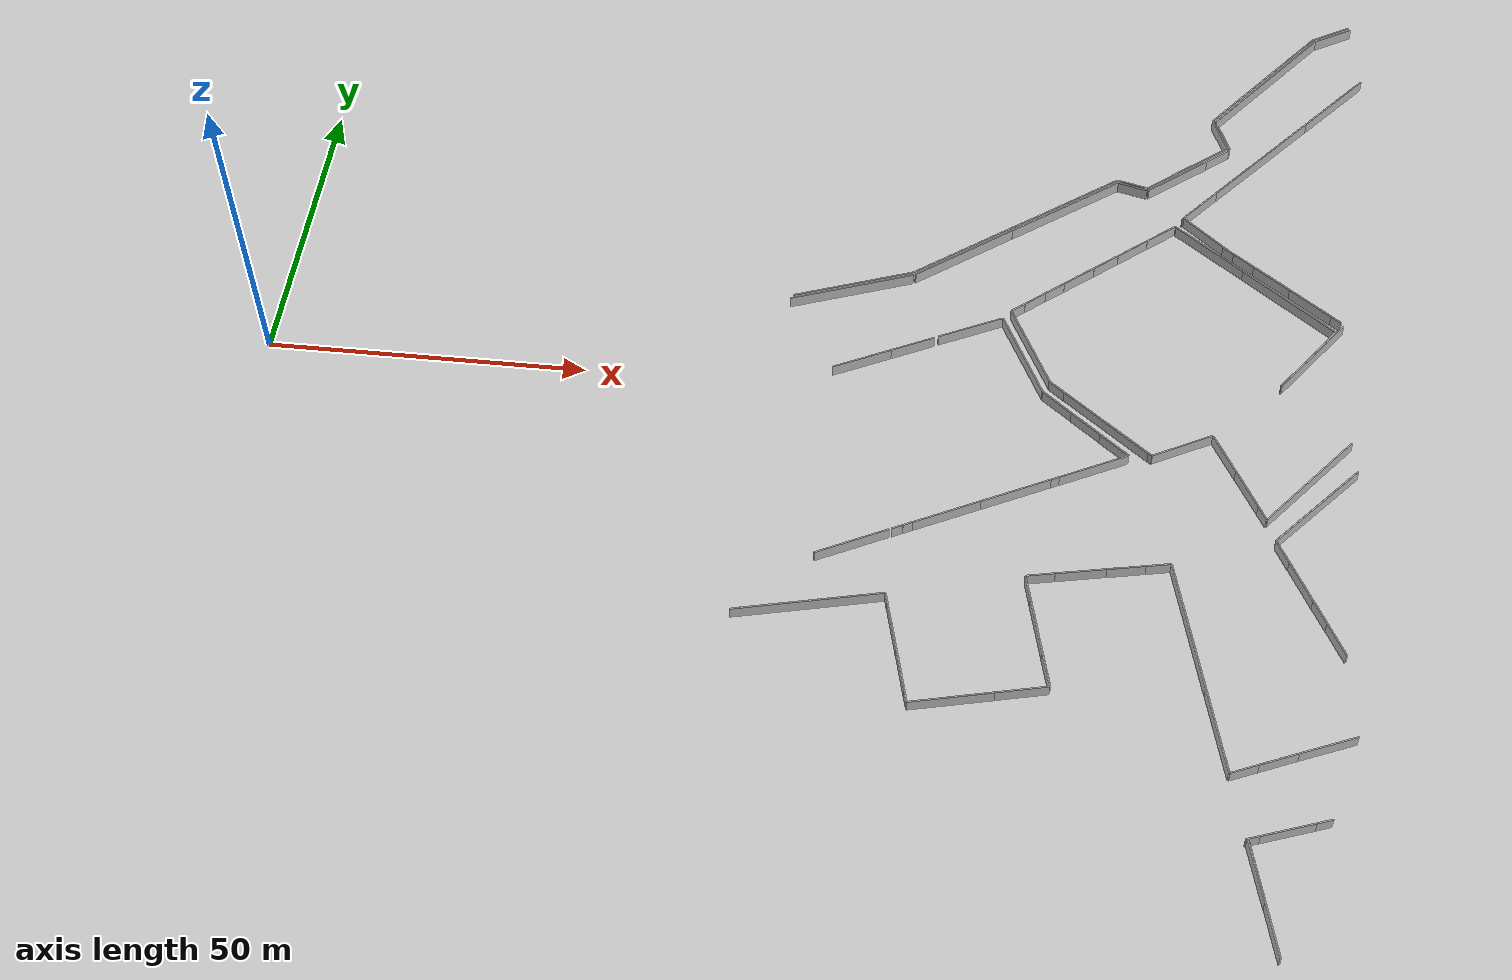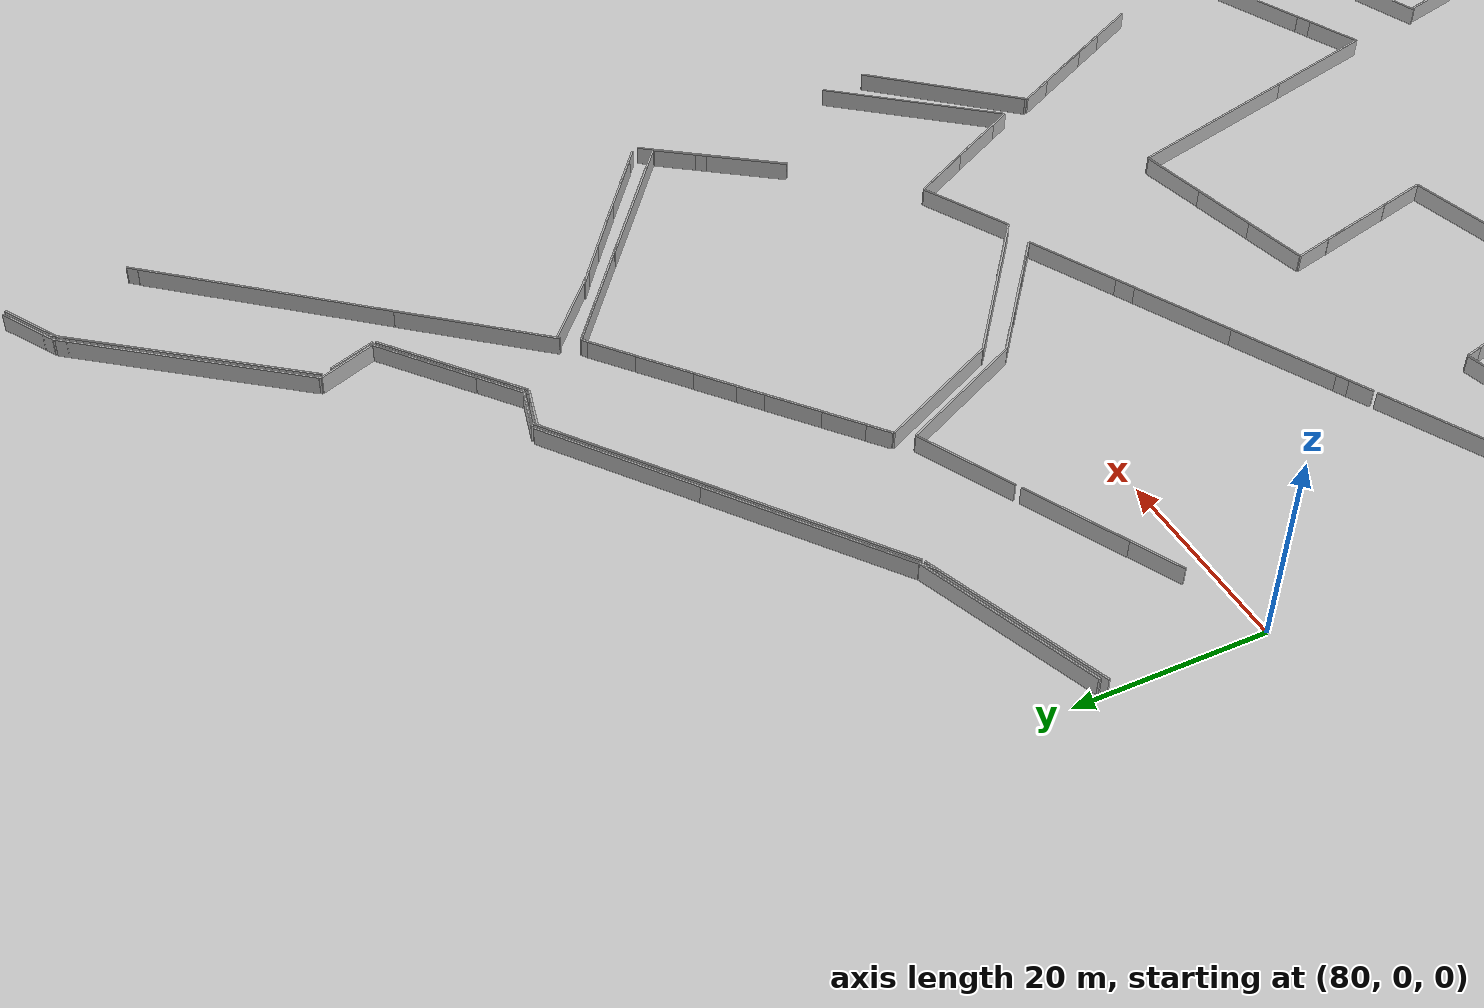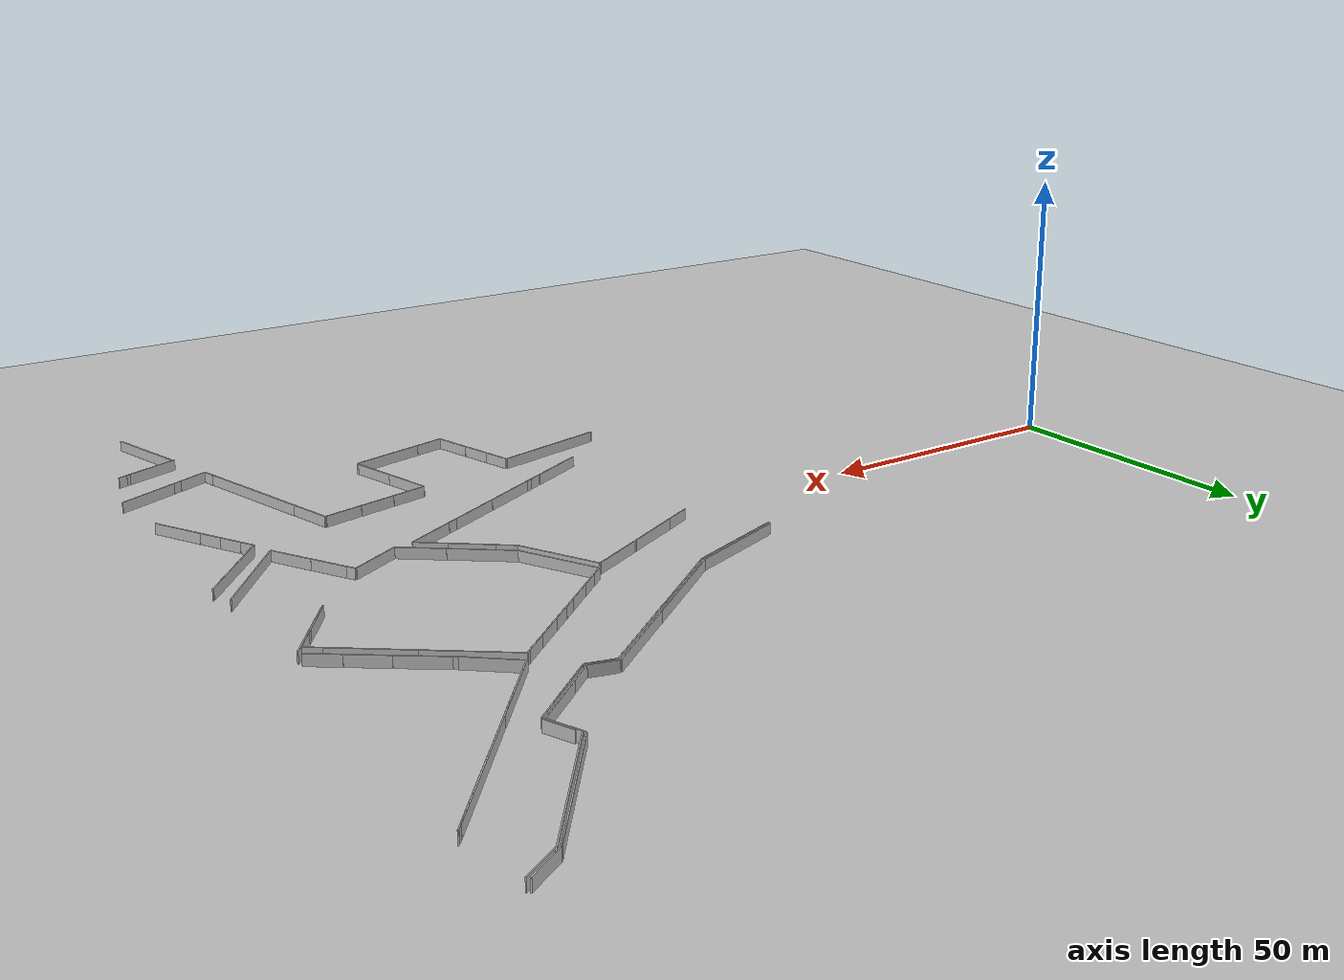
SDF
<sdf version="1.7">
 <world name="slam_world">
  <model name="ground_plane">
   <static>1</static>
   <link name="link">
    <collision name="collision">
     <geometry><plane><normal>0 0 1</normal><size>100 100</size></plane></geometry>
    </collision>
    <visual name="visual">
     <geometry><plane><normal>0 0 1</normal><size>100 100</size></plane></geometry>
     <material>
      <ambient>0.8 0.8 0.8 1</ambient>
      <diffuse>0.8 0.8 0.8 1</diffuse>
      <specular>0.8 0.8 0.8 1</specular>
     </material>
    </visual>
   </link>
  </model>
  <model name="wall_2">
   <static>1</static>
   <pose>115.076 35.5 1 0 -0 0.645263</pose>
   <link name="link">
    <collision name="collision"><geometry><box><size>39.7401 0.2 2</size></box></geometry></collision>
    <visual name="visual">
     <geometry><box><size>39.7401 0.2 2</size></box></geometry>
     <material><ambient>0.5 0.5 0.5 1</ambient><diffuse>0.7 0.7 0.7 1</diffuse></material>
    </visual>
   </link>
  </model>
  <model name="wall_3">
   <static>1</static>
   <pose>155.401 56.975 1 0 -0 0.872171</pose>
   <link name="link">
    <collision name="collision"><geometry><box><size>44.4675 0.2 2</size></box></geometry></collision>
    <visual name="visual">
     <geometry><box><size>44.4675 0.2 2</size></box></geometry>
     <material><ambient>0.5 0.5 0.5 1</ambient><diffuse>0.7 0.7 0.7 1</diffuse></material>
    </visual>
   </link>
  </model>
  <model name="wall_4">
   <static>1</static>
   <pose>154.201 73.825 1 0 -0 0.907997</pose>
   <link name="link">
    <collision name="collision"><geometry><box><size>27.4651 0.2 2</size></box></geometry></collision>
    <visual name="visual">
     <geometry><box><size>27.4651 0.2 2</size></box></geometry>
     <material><ambient>0.5 0.5 0.5 1</ambient><diffuse>0.7 0.7 0.7 1</diffuse></material>
    </visual>
   </link>
  </model>
  <model name="wall_7">
   <static>1</static>
   <pose>113.851 35.2 1 0 -0 0.644967</pose>
   <link name="link">
    <collision name="collision"><geometry><box><size>40.92 0.2 2</size></box></geometry></collision>
    <visual name="visual">
     <geometry><box><size>40.92 0.2 2</size></box></geometry>
     <material><ambient>0.5 0.5 0.5 1</ambient><diffuse>0.7 0.7 0.7 1</diffuse></material>
    </visual>
   </link>
  </model>
  <model name="wall_17">
   <static>1</static>
   <pose>155.026 74.05 1 0 -0 0.907765</pose>
   <link name="link">
    <collision name="collision"><geometry><box><size>28.6755 0.2 2</size></box></geometry></collision>
    <visual name="visual">
     <geometry><box><size>28.6755 0.2 2</size></box></geometry>
     <material><ambient>0.5 0.5 0.5 1</ambient><diffuse>0.7 0.7 0.7 1</diffuse></material>
    </visual>
   </link>
  </model>
  <model name="wall_18">
   <static>1</static>
   <pose>89.076 -40.8 1 0 -0 0.228296</pose>
   <link name="link">
    <collision name="collision"><geometry><box><size>22.5347 0.2 2</size></box></geometry></collision>
    <visual name="visual">
     <geometry><box><size>22.5347 0.2 2</size></box></geometry>
     <material><ambient>0.5 0.5 0.5 1</ambient><diffuse>0.7 0.7 0.7 1</diffuse></material>
    </visual>
   </link>
  </model>
  <model name="wall_28">
   <static>1</static>
   <pose>151.576 29.1 1 0 0 -0.664518</pose>
   <link name="link">
    <collision name="collision"><geometry><box><size>29.0264 0.2 2</size></box></geometry></collision>
    <visual name="visual">
     <geometry><box><size>29.0264 0.2 2</size></box></geometry>
     <material><ambient>0.5 0.5 0.5 1</ambient><diffuse>0.7 0.7 0.7 1</diffuse></material>
    </visual>
   </link>
  </model>
  <model name="wall_42">
   <static>1</static>
   <pose>141.926 51.1 1 0 -0 0.681298</pose>
   <link name="link">
    <collision name="collision"><geometry><box><size>16.6719 0.2 2</size></box></geometry></collision>
    <visual name="visual">
     <geometry><box><size>16.6719 0.2 2</size></box></geometry>
     <material><ambient>0.5 0.5 0.5 1</ambient><diffuse>0.7 0.7 0.7 1</diffuse></material>
    </visual>
   </link>
  </model>
  <model name="wall_51">
   <static>1</static>
   <pose>129.226 -2.575 1 0 0 -0.679039</pose>
   <link name="link">
    <collision name="collision"><geometry><box><size>19.9826 0.2 2</size></box></geometry></collision>
    <visual name="visual">
     <geometry><box><size>19.9826 0.2 2</size></box></geometry>
     <material><ambient>0.5 0.5 0.5 1</ambient><diffuse>0.7 0.7 0.7 1</diffuse></material>
    </visual>
   </link>
  </model>
  <model name="wall_61">
   <static>1</static>
   <pose>141.601 51.45 1 0 -0 0.680941</pose>
   <link name="link">
    <collision name="collision"><geometry><box><size>17.6324 0.2 2</size></box></geometry></collision>
    <visual name="visual">
     <geometry><box><size>17.6324 0.2 2</size></box></geometry>
     <material><ambient>0.5 0.5 0.5 1</ambient><diffuse>0.7 0.7 0.7 1</diffuse></material>
    </visual>
   </link>
  </model>
  <model name="wall_75">
   <static>1</static>
   <pose>154.301 -81.8 1 0 0 -1.32718</pose>
   <link name="link">
    <collision name="collision"><geometry><box><size>17.8264 0.2 2</size></box></geometry></collision>
    <visual name="visual">
     <geometry><box><size>17.8264 0.2 2</size></box></geometry>
     <material><ambient>0.5 0.5 0.5 1</ambient><diffuse>0.7 0.7 0.7 1</diffuse></material>
    </visual>
   </link>
  </model>
  <model name="wall_80">
   <static>1</static>
   <pose>162.926 14.75 1 0 -0 0.933726</pose>
   <link name="link">
    <collision name="collision"><geometry><box><size>3.11006 0.2 2</size></box></geometry></collision>
    <visual name="visual">
     <geometry><box><size>3.11006 0.2 2</size></box></geometry>
     <material><ambient>0.5 0.5 0.5 1</ambient><diffuse>0.7 0.7 0.7 1</diffuse></material>
    </visual>
   </link>
  </model>
  <model name="wall_88">
   <static>1</static>
   <pose>162.151 -16.125 1 0 -0 0.855758</pose>
   <link name="link">
    <collision name="collision"><geometry><box><size>18.6076 0.2 2</size></box></geometry></collision>
    <visual name="visual">
     <geometry><box><size>18.6076 0.2 2</size></box></geometry>
     <material><ambient>0.5 0.5 0.5 1</ambient><diffuse>0.7 0.7 0.7 1</diffuse></material>
    </visual>
   </link>
  </model>
  <model name="wall_91">
   <static>1</static>
   <pose>98.176 8.15 1 0 -0 0.457719</pose>
   <link name="link">
    <collision name="collision"><geometry><box><size>11.3147 0.2 2</size></box></geometry></collision>
    <visual name="visual">
     <geometry><box><size>11.3147 0.2 2</size></box></geometry>
     <material><ambient>0.5 0.5 0.5 1</ambient><diffuse>0.7 0.7 0.7 1</diffuse></material>
    </visual>
   </link>
  </model>
  <model name="wall_95">
   <static>1</static>
   <pose>89.451 19.95 1 0 -0 0.350045</pose>
   <link name="link">
    <collision name="collision"><geometry><box><size>20.1201 0.2 2</size></box></geometry></collision>
    <visual name="visual">
     <geometry><box><size>20.1201 0.2 2</size></box></geometry>
     <material><ambient>0.5 0.5 0.5 1</ambient><diffuse>0.7 0.7 0.7 1</diffuse></material>
    </visual>
   </link>
  </model>
  <model name="wall_105">
   <static>1</static>
   <pose>143.576 -39.425 1 0 0 -1.32526</pose>
   <link name="link">
    <collision name="collision"><geometry><box><size>21.5978 0.2 2</size></box></geometry></collision>
    <visual name="visual">
     <geometry><box><size>21.5978 0.2 2</size></box></geometry>
     <material><ambient>0.5 0.5 0.5 1</ambient><diffuse>0.7 0.7 0.7 1</diffuse></material>
    </visual>
   </link>
  </model>
  <model name="wall_107">
   <static>1</static>
   <pose>118.201 10.475 1 0 0 -1.1144</pose>
   <link name="link">
    <collision name="collision"><geometry><box><size>15.4293 0.2 2</size></box></geometry></collision>
    <visual name="visual">
     <geometry><box><size>15.4293 0.2 2</size></box></geometry>
     <material><ambient>0.5 0.5 0.5 1</ambient><diffuse>0.7 0.7 0.7 1</diffuse></material>
    </visual>
   </link>
  </model>
  <model name="wall_117">
   <static>1</static>
   <pose>117.076 8.65 1 0 0 -1.11563</pose>
   <link name="link">
    <collision name="collision"><geometry><box><size>15.8096 0.2 2</size></box></geometry></collision>
    <visual name="visual">
     <geometry><box><size>15.8096 0.2 2</size></box></geometry>
     <material><ambient>0.5 0.5 0.5 1</ambient><diffuse>0.7 0.7 0.7 1</diffuse></material>
    </visual>
   </link>
  </model>
  <model name="wall_124">
   <static>1</static>
   <pose>128.976 -12.125 1 0 -0 0.469541</pose>
   <link name="link">
    <collision name="collision"><geometry><box><size>11.3818 0.2 2</size></box></geometry></collision>
    <visual name="visual">
     <geometry><box><size>11.3818 0.2 2</size></box></geometry>
     <material><ambient>0.5 0.5 0.5 1</ambient><diffuse>0.7 0.7 0.7 1</diffuse></material>
    </visual>
   </link>
  </model>
  <model name="wall_126">
   <static>1</static>
   <pose>162.176 -16.025 1 0 -0 0.854785</pose>
   <link name="link">
    <collision name="collision"><geometry><box><size>18.3582 0.2 2</size></box></geometry></collision>
    <visual name="visual">
     <geometry><box><size>18.3582 0.2 2</size></box></geometry>
     <material><ambient>0.5 0.5 0.5 1</ambient><diffuse>0.7 0.7 0.7 1</diffuse></material>
    </visual>
   </link>
  </model>
  <model name="wall_134">
   <static>1</static>
   <pose>121.101 -37.875 1 0 0 -1.3296</pose>
   <link name="link">
    <collision name="collision"><geometry><box><size>9.62873 0.2 2</size></box></geometry></collision>
    <visual name="visual">
     <geometry><box><size>9.62873 0.2 2</size></box></geometry>
     <material><ambient>0.5 0.5 0.5 1</ambient><diffuse>0.7 0.7 0.7 1</diffuse></material>
    </visual>
   </link>
  </model>
  <model name="wall_151">
   <static>1</static>
   <pose>146.301 -50.225 1 0 0 -1.32536</pose>
   <link name="link">
    <collision name="collision"><geometry><box><size>26.7517 0.2 2</size></box></geometry></collision>
    <visual name="visual">
     <geometry><box><size>26.7517 0.2 2</size></box></geometry>
     <material><ambient>0.5 0.5 0.5 1</ambient><diffuse>0.7 0.7 0.7 1</diffuse></material>
    </visual>
   </link>
  </model>
  <model name="wall_154">
   <static>1</static>
   <pose>129.601 -5.875 1 0 0 -0.683584</pose>
   <link name="link">
    <collision name="collision"><geometry><box><size>11.4792 0.2 2</size></box></geometry></collision>
    <visual name="visual">
     <geometry><box><size>11.4792 0.2 2</size></box></geometry>
     <material><ambient>0.5 0.5 0.5 1</ambient><diffuse>0.7 0.7 0.7 1</diffuse></material>
    </visual>
   </link>
  </model>
  <model name="wall_171">
   <static>1</static>
   <pose>163.651 -37.825 1 0 0 -1.09604</pose>
   <link name="link">
    <collision name="collision"><geometry><box><size>10.0629 0.2 2</size></box></geometry></collision>
    <visual name="visual">
     <geometry><box><size>10.0629 0.2 2</size></box></geometry>
     <material><ambient>0.5 0.5 0.5 1</ambient><diffuse>0.7 0.7 0.7 1</diffuse></material>
    </visual>
   </link>
  </model>
  <model name="wall_176">
   <static>1</static>
   <pose>89.576 20.525 1 0 -0 0.350728</pose>
   <link name="link">
    <collision name="collision"><geometry><box><size>19.646 0.2 2</size></box></geometry></collision>
    <visual name="visual">
     <geometry><box><size>19.646 0.2 2</size></box></geometry>
     <material><ambient>0.5 0.5 0.5 1</ambient><diffuse>0.7 0.7 0.7 1</diffuse></material>
    </visual>
   </link>
  </model>
  <model name="wall_177">
   <static>1</static>
   <pose>125.051 -2.125 1 0 0 -0.683584</pose>
   <link name="link">
    <collision name="collision"><geometry><box><size>11.4792 0.2 2</size></box></geometry></collision>
    <visual name="visual">
     <geometry><box><size>11.4792 0.2 2</size></box></geometry>
     <material><ambient>0.5 0.5 0.5 1</ambient><diffuse>0.7 0.7 0.7 1</diffuse></material>
    </visual>
   </link>
  </model>
  <model name="wall_180">
   <static>1</static>
   <pose>122.651 -44.3 1 0 0 -1.32923</pose>
   <link name="link">
    <collision name="collision"><geometry><box><size>14.2127 0.2 2</size></box></geometry></collision>
    <visual name="visual">
     <geometry><box><size>14.2127 0.2 2</size></box></geometry>
     <material><ambient>0.5 0.5 0.5 1</ambient><diffuse>0.7 0.7 0.7 1</diffuse></material>
    </visual>
   </link>
  </model>
  <model name="wall_192">
   <static>1</static>
   <pose>94.301 -29.55 1 0 -0 0.46745</pose>
   <link name="link">
    <collision name="collision"><geometry><box><size>11.7618 0.2 2</size></box></geometry></collision>
    <visual name="visual">
     <geometry><box><size>11.7618 0.2 2</size></box></geometry>
     <material><ambient>0.5 0.5 0.5 1</ambient><diffuse>0.7 0.7 0.7 1</diffuse></material>
    </visual>
   </link>
  </model>
  <model name="wall_199">
   <static>1</static>
   <pose>150.451 -11.55 1 0 0 -1.07899</pose>
   <link name="link">
    <collision name="collision"><geometry><box><size>12.7059 0.2 2</size></box></geometry></collision>
    <visual name="visual">
     <geometry><box><size>12.7059 0.2 2</size></box></geometry>
     <material><ambient>0.5 0.5 0.5 1</ambient><diffuse>0.7 0.7 0.7 1</diffuse></material>
    </visual>
   </link>
  </model>
  <model name="wall_201">
   <static>1</static>
   <pose>144.931 37.0112 1 0 0 -0.723024</pose>
   <link name="link">
    <collision name="collision"><geometry><box><size>9.85013 0.2 2</size></box></geometry></collision>
    <visual name="visual">
     <geometry><box><size>9.85013 0.2 2</size></box></geometry>
     <material><ambient>0.5 0.5 0.5 1</ambient><diffuse>0.7 0.7 0.7 1</diffuse></material>
    </visual>
   </link>
  </model>
  <model name="wall_205">
   <static>1</static>
   <pose>160.351 24.775 1 0 0 -0.659848</pose>
   <link name="link">
    <collision name="collision"><geometry><box><size>11.0115 0.2 2</size></box></geometry></collision>
    <visual name="visual">
     <geometry><box><size>11.0115 0.2 2</size></box></geometry>
     <material><ambient>0.5 0.5 0.5 1</ambient><diffuse>0.7 0.7 0.7 1</diffuse></material>
    </visual>
   </link>
  </model>
  <model name="wall_207">
   <static>1</static>
   <pose>120.851 22.425 1 0 -0 0.694738</pose>
   <link name="link">
    <collision name="collision"><geometry><box><size>10.5438 0.2 2</size></box></geometry></collision>
    <visual name="visual">
     <geometry><box><size>10.5438 0.2 2</size></box></geometry>
     <material><ambient>0.5 0.5 0.5 1</ambient><diffuse>0.7 0.7 0.7 1</diffuse></material>
    </visual>
   </link>
  </model>
  <model name="wall_213">
   <static>1</static>
   <pose>126.676 27.225 1 0 -0 0.695364</pose>
   <link name="link">
    <collision name="collision"><geometry><box><size>10.2237 0.2 2</size></box></geometry></collision>
    <visual name="visual">
     <geometry><box><size>10.2237 0.2 2</size></box></geometry>
     <material><ambient>0.5 0.5 0.5 1</ambient><diffuse>0.7 0.7 0.7 1</diffuse></material>
    </visual>
   </link>
  </model>
  <model name="wall_215">
   <static>1</static>
   <pose>102.826 -48.95 1 0 0 -1.32366</pose>
   <link name="link">
    <collision name="collision"><geometry><box><size>11.2416 0.2 2</size></box></geometry></collision>
    <visual name="visual">
     <geometry><box><size>11.2416 0.2 2</size></box></geometry>
     <material><ambient>0.5 0.5 0.5 1</ambient><diffuse>0.7 0.7 0.7 1</diffuse></material>
    </visual>
   </link>
  </model>
  <model name="wall_222">
   <static>1</static>
   <pose>108.676 13.35 1 0 -0 0.457475</pose>
   <link name="link">
    <collision name="collision"><geometry><box><size>10.8675 0.2 2</size></box></geometry></collision>
    <visual name="visual">
     <geometry><box><size>10.8675 0.2 2</size></box></geometry>
     <material><ambient>0.5 0.5 0.5 1</ambient><diffuse>0.7 0.7 0.7 1</diffuse></material>
    </visual>
   </link>
  </model>
  <model name="wall_236">
   <static>1</static>
   <pose>117.376 -53.4 1 0 -0 0.22912</pose>
   <link name="link">
    <collision name="collision"><geometry><box><size>14.5297 0.2 2</size></box></geometry></collision>
    <visual name="visual">
     <geometry><box><size>14.5297 0.2 2</size></box></geometry>
     <material><ambient>0.5 0.5 0.5 1</ambient><diffuse>0.7 0.7 0.7 1</diffuse></material>
    </visual>
   </link>
  </model>
  <model name="wall_242">
   <static>1</static>
   <pose>108.151 -22.6 1 0 -0 0.46745</pose>
   <link name="link">
    <collision name="collision"><geometry><box><size>11.7618 0.2 2</size></box></geometry></collision>
    <visual name="visual">
     <geometry><box><size>11.7618 0.2 2</size></box></geometry>
     <material><ambient>0.5 0.5 0.5 1</ambient><diffuse>0.7 0.7 0.7 1</diffuse></material>
    </visual>
   </link>
  </model>
  <model name="wall_248">
   <static>1</static>
   <pose>161.101 -11.525 1 0 -0 0.889081</pose>
   <link name="link">
    <collision name="collision"><geometry><box><size>20.1547 0.2 2</size></box></geometry></collision>
    <visual name="visual">
     <geometry><box><size>20.1547 0.2 2</size></box></geometry>
     <material><ambient>0.5 0.5 0.5 1</ambient><diffuse>0.7 0.7 0.7 1</diffuse></material>
    </visual>
   </link>
  </model>
  <model name="wall_251">
   <static>1</static>
   <pose>159.326 -29.5 1 0 0 -1.09681</pose>
   <link name="link">
    <collision name="collision"><geometry><box><size>8.65404 0.2 2</size></box></geometry></collision>
    <visual name="visual">
     <geometry><box><size>8.65404 0.2 2</size></box></geometry>
     <material><ambient>0.5 0.5 0.5 1</ambient><diffuse>0.7 0.7 0.7 1</diffuse></material>
    </visual>
   </link>
  </model>
  <model name="wall_267">
   <static>1</static>
   <pose>117.801 -17.75 1 0 -0 0.46745</pose>
   <link name="link">
    <collision name="collision"><geometry><box><size>11.7618 0.2 2</size></box></geometry></collision>
    <visual name="visual">
     <geometry><box><size>11.7618 0.2 2</size></box></geometry>
     <material><ambient>0.5 0.5 0.5 1</ambient><diffuse>0.7 0.7 0.7 1</diffuse></material>
    </visual>
   </link>
  </model>
  <model name="wall_269">
   <static>1</static>
   <pose>128.901 -31.325 1 0 -0 0.204546</pose>
   <link name="link">
    <collision name="collision"><geometry><box><size>9.60013 0.2 2</size></box></geometry></collision>
    <visual name="visual">
     <geometry><box><size>9.60013 0.2 2</size></box></geometry>
     <material><ambient>0.5 0.5 0.5 1</ambient><diffuse>0.7 0.7 0.7 1</diffuse></material>
    </visual>
   </link>
  </model>
  <model name="wall_277">
   <static>1</static>
   <pose>157.749 -71.1503 1 0 -0 0.345706</pose>
   <link name="link">
    <collision name="collision"><geometry><box><size>12.542 0.2 2</size></box></geometry></collision>
    <visual name="visual">
     <geometry><box><size>12.542 0.2 2</size></box></geometry>
     <material><ambient>0.5 0.5 0.5 1</ambient><diffuse>0.7 0.7 0.7 1</diffuse></material>
    </visual>
   </link>
  </model>
  <model name="wall_279">
   <static>1</static>
   <pose>101.326 -43.1 1 0 0 -1.32329</pose>
   <link name="link">
    <collision name="collision"><geometry><box><size>9.59231 0.2 2</size></box></geometry></collision>
    <visual name="visual">
     <geometry><box><size>9.59231 0.2 2</size></box></geometry>
     <material><ambient>0.5 0.5 0.5 1</ambient><diffuse>0.7 0.7 0.7 1</diffuse></material>
    </visual>
   </link>
  </model>
  <model name="wall_287">
   <static>1</static>
   <pose>132.851 46.425 1 0 0 -0.254758</pose>
   <link name="link">
    <collision name="collision"><geometry><box><size>4.96009 0.2 2</size></box></geometry></collision>
    <visual name="visual">
     <geometry><box><size>4.96009 0.2 2</size></box></geometry>
     <material><ambient>0.5 0.5 0.5 1</ambient><diffuse>0.7 0.7 0.7 1</diffuse></material>
    </visual>
   </link>
  </model>
  <model name="wall_291">
   <static>1</static>
   <pose>131.351 31.075 1 0 -0 0.694738</pose>
   <link name="link">
    <collision name="collision"><geometry><box><size>10.5438 0.2 2</size></box></geometry></collision>
    <visual name="visual">
     <geometry><box><size>10.5438 0.2 2</size></box></geometry>
     <material><ambient>0.5 0.5 0.5 1</ambient><diffuse>0.7 0.7 0.7 1</diffuse></material>
    </visual>
   </link>
  </model>
  <model name="wall_294">
   <static>1</static>
   <pose>165.376 85.625 1 0 -0 0.524259</pose>
   <link name="link">
    <collision name="collision"><geometry><box><size>8.49029 0.2 2</size></box></geometry></collision>
    <visual name="visual">
     <geometry><box><size>8.49029 0.2 2</size></box></geometry>
     <material><ambient>0.5 0.5 0.5 1</ambient><diffuse>0.7 0.7 0.7 1</diffuse></material>
    </visual>
   </link>
  </model>
  <model name="wall_298">
   <static>1</static>
   <pose>165.651 86.375 1 0 -0 0.529128</pose>
   <link name="link">
    <collision name="collision"><geometry><box><size>6.83465 0.2 2</size></box></geometry></collision>
    <visual name="visual">
     <geometry><box><size>6.83465 0.2 2</size></box></geometry>
     <material><ambient>0.5 0.5 0.5 1</ambient><diffuse>0.7 0.7 0.7 1</diffuse></material>
    </visual>
   </link>
  </model>
  <model name="wall_304">
   <static>1</static>
   <pose>135.201 34.25 1 0 -0 0.694738</pose>
   <link name="link">
    <collision name="collision"><geometry><box><size>10.9344 0.2 2</size></box></geometry></collision>
    <visual name="visual">
     <geometry><box><size>10.9344 0.2 2</size></box></geometry>
     <material><ambient>0.5 0.5 0.5 1</ambient><diffuse>0.7 0.7 0.7 1</diffuse></material>
    </visual>
   </link>
  </model>
  <model name="wall_309">
   <static>1</static>
   <pose>161.901 -57.9 1 0 -0 0.402655</pose>
   <link name="link">
    <collision name="collision"><geometry><box><size>11.7388 0.2 2</size></box></geometry></collision>
    <visual name="visual">
     <geometry><box><size>11.7388 0.2 2</size></box></geometry>
     <material><ambient>0.5 0.5 0.5 1</ambient><diffuse>0.7 0.7 0.7 1</diffuse></material>
    </visual>
   </link>
  </model>
  <model name="wall_316">
   <static>1</static>
   <pose>115.876 18.35 1 0 -0 0.692334</pose>
   <link name="link">
    <collision name="collision"><geometry><box><size>2.66317 0.2 2</size></box></geometry></collision>
    <visual name="visual">
     <geometry><box><size>2.66317 0.2 2</size></box></geometry>
     <material><ambient>0.5 0.5 0.5 1</ambient><diffuse>0.7 0.7 0.7 1</diffuse></material>
    </visual>
   </link>
  </model>
  <model name="wall_318">
   <static>1</static>
   <pose>89.676 20.6 1 0 -0 0.350083</pose>
   <link name="link">
    <collision name="collision"><geometry><box><size>19.5349 0.2 2</size></box></geometry></collision>
    <visual name="visual">
     <geometry><box><size>19.5349 0.2 2</size></box></geometry>
     <material><ambient>0.5 0.5 0.5 1</ambient><diffuse>0.7 0.7 0.7 1</diffuse></material>
    </visual>
   </link>
  </model>
  <model name="wall_325">
   <static>1</static>
   <pose>106.426 29.025 1 0 -0 0.645149</pose>
   <link name="link">
    <collision name="collision"><geometry><box><size>18.21 0.2 2</size></box></geometry></collision>
    <visual name="visual">
     <geometry><box><size>18.21 0.2 2</size></box></geometry>
     <material><ambient>0.5 0.5 0.5 1</ambient><diffuse>0.7 0.7 0.7 1</diffuse></material>
    </visual>
   </link>
  </model>
  <model name="wall_330">
   <static>1</static>
   <pose>103.801 -52.725 1 0 0 -1.32417</pose>
   <link name="link">
    <collision name="collision"><geometry><box><size>7.37309 0.2 2</size></box></geometry></collision>
    <visual name="visual">
     <geometry><box><size>7.37309 0.2 2</size></box></geometry>
     <material><ambient>0.5 0.5 0.5 1</ambient><diffuse>0.7 0.7 0.7 1</diffuse></material>
    </visual>
   </link>
  </model>
  <model name="wall_338">
   <static>1</static>
   <pose>152.326 -62.025 1 0 -0 0.41388</pose>
   <link name="link">
    <collision name="collision"><geometry><box><size>5.84337 0.2 2</size></box></geometry></collision>
    <visual name="visual">
     <geometry><box><size>5.84337 0.2 2</size></box></geometry>
     <material><ambient>0.5 0.5 0.5 1</ambient><diffuse>0.7 0.7 0.7 1</diffuse></material>
    </visual>
   </link>
  </model>
  <model name="wall_340">
   <static>1</static>
   <pose>158.501 60.625 1 0 -0 0.871767</pose>
   <link name="link">
    <collision name="collision"><geometry><box><size>37.2975 0.2 2</size></box></geometry></collision>
    <visual name="visual">
     <geometry><box><size>37.2975 0.2 2</size></box></geometry>
     <material><ambient>0.5 0.5 0.5 1</ambient><diffuse>0.7 0.7 0.7 1</diffuse></material>
    </visual>
   </link>
  </model>
  <model name="wall_346">
   <static>1</static>
   <pose>89.176 -40.75 1 0 -0 0.226968</pose>
   <link name="link">
    <collision name="collision"><geometry><box><size>22.2199 0.2 2</size></box></geometry></collision>
    <visual name="visual">
     <geometry><box><size>22.2199 0.2 2</size></box></geometry>
     <material><ambient>0.5 0.5 0.5 1</ambient><diffuse>0.7 0.7 0.7 1</diffuse></material>
    </visual>
   </link>
  </model>
  <model name="wall_351">
   <static>1</static>
   <pose>136.176 -29.85 1 0 -0 0.204741</pose>
   <link name="link">
    <collision name="collision"><geometry><box><size>9.34519 0.2 2</size></box></geometry></collision>
    <visual name="visual">
     <geometry><box><size>9.34519 0.2 2</size></box></geometry>
     <material><ambient>0.5 0.5 0.5 1</ambient><diffuse>0.7 0.7 0.7 1</diffuse></material>
    </visual>
   </link>
  </model>
  <model name="wall_352">
   <static>1</static>
   <pose>152.726 30.625 1 0 0 -0.649151</pose>
   <link name="link">
    <collision name="collision"><geometry><box><size>8.85014 0.2 2</size></box></geometry></collision>
    <visual name="visual">
     <geometry><box><size>8.85014 0.2 2</size></box></geometry>
     <material><ambient>0.5 0.5 0.5 1</ambient><diffuse>0.7 0.7 0.7 1</diffuse></material>
    </visual>
   </link>
  </model>
  <model name="wall_358">
   <static>1</static>
   <pose>122.426 41 1 0 -0 0.644899</pose>
   <link name="link">
    <collision name="collision"><geometry><box><size>21.46 0.2 2</size></box></geometry></collision>
    <visual name="visual">
     <geometry><box><size>21.46 0.2 2</size></box></geometry>
     <material><ambient>0.5 0.5 0.5 1</ambient><diffuse>0.7 0.7 0.7 1</diffuse></material>
    </visual>
   </link>
  </model>
  <model name="wall_359">
   <static>1</static>
   <pose>110.801 -54.95 1 0 -0 0.227402</pose>
   <link name="link">
    <collision name="collision"><geometry><box><size>12.4197 0.2 2</size></box></geometry></collision>
    <visual name="visual">
     <geometry><box><size>12.4197 0.2 2</size></box></geometry>
     <material><ambient>0.5 0.5 0.5 1</ambient><diffuse>0.7 0.7 0.7 1</diffuse></material>
    </visual>
   </link>
  </model>
  <model name="wall_361">
   <static>1</static>
   <pose>165.851 69.35 1 0 -0 0.872555</pose>
   <link name="link">
    <collision name="collision"><geometry><box><size>14.6219 0.2 2</size></box></geometry></collision>
    <visual name="visual">
     <geometry><box><size>14.6219 0.2 2</size></box></geometry>
     <material><ambient>0.5 0.5 0.5 1</ambient><diffuse>0.7 0.7 0.7 1</diffuse></material>
    </visual>
   </link>
  </model>
  <model name="wall_363">
   <static>1</static>
   <pose>142.026 -6.825 1 0 -0 0.487925</pose>
   <link name="link">
    <collision name="collision"><geometry><box><size>10.1324 0.2 2</size></box></geometry></collision>
    <visual name="visual">
     <geometry><box><size>10.1324 0.2 2</size></box></geometry>
     <material><ambient>0.5 0.5 0.5 1</ambient><diffuse>0.7 0.7 0.7 1</diffuse></material>
    </visual>
   </link>
  </model>
  <model name="wall_371">
   <static>1</static>
   <pose>157.901 -71.1 1 0 -0 0.346835</pose>
   <link name="link">
    <collision name="collision"><geometry><box><size>8.82553 0.2 2</size></box></geometry></collision>
    <visual name="visual">
     <geometry><box><size>8.82553 0.2 2</size></box></geometry>
     <material><ambient>0.5 0.5 0.5 1</ambient><diffuse>0.7 0.7 0.7 1</diffuse></material>
    </visual>
   </link>
  </model>
  <model name="wall_377">
   <static>1</static>
   <pose>143.851 53.325 1 0 -0 0.680678</pose>
   <link name="link">
    <collision name="collision"><geometry><box><size>11.8382 0.2 2</size></box></geometry></collision>
    <visual name="visual">
     <geometry><box><size>11.8382 0.2 2</size></box></geometry>
     <material><ambient>0.5 0.5 0.5 1</ambient><diffuse>0.7 0.7 0.7 1</diffuse></material>
    </visual>
   </link>
  </model>
  <model name="wall_378">
   <static>1</static>
   <pose>146.126 33.4 1 0 0 -0.664706</pose>
   <link name="link">
    <collision name="collision"><geometry><box><size>15.5635 0.2 2</size></box></geometry></collision>
    <visual name="visual">
     <geometry><box><size>15.5635 0.2 2</size></box></geometry>
     <material><ambient>0.5 0.5 0.5 1</ambient><diffuse>0.7 0.7 0.7 1</diffuse></material>
    </visual>
   </link>
  </model>
  <model name="wall_381">
   <static>1</static>
   <pose>107.551 30.5 1 0 -0 0.644425</pose>
   <link name="link">
    <collision name="collision"><geometry><box><size>21.64 0.2 2</size></box></geometry></collision>
    <visual name="visual">
     <geometry><box><size>21.64 0.2 2</size></box></geometry>
     <material><ambient>0.5 0.5 0.5 1</ambient><diffuse>0.7 0.7 0.7 1</diffuse></material>
    </visual>
   </link>
  </model>
  <model name="wall_385">
   <static>1</static>
   <pose>158.151 23.9 1 0 0 -0.665356</pose>
   <link name="link">
    <collision name="collision"><geometry><box><size>18.3044 0.2 2</size></box></geometry></collision>
    <visual name="visual">
     <geometry><box><size>18.3044 0.2 2</size></box></geometry>
     <material><ambient>0.5 0.5 0.5 1</ambient><diffuse>0.7 0.7 0.7 1</diffuse></material>
    </visual>
   </link>
  </model>
  <model name="wall_386">
   <static>1</static>
   <pose>147.003 59.8121 1 0 0 -1.18893</pose>
   <link name="link">
    <collision name="collision"><geometry><box><size>6.84288 0.2 2</size></box></geometry></collision>
    <visual name="visual">
     <geometry><box><size>6.84288 0.2 2</size></box></geometry>
     <material><ambient>0.5 0.5 0.5 1</ambient><diffuse>0.7 0.7 0.7 1</diffuse></material>
    </visual>
   </link>
  </model>
  <model name="wall_389">
   <static>1</static>
   <pose>131.826 -7.725 1 0 0 -0.684476</pose>
   <link name="link">
    <collision name="collision"><geometry><box><size>5.61471 0.2 2</size></box></geometry></collision>
    <visual name="visual">
     <geometry><box><size>5.61471 0.2 2</size></box></geometry>
     <material><ambient>0.5 0.5 0.5 1</ambient><diffuse>0.7 0.7 0.7 1</diffuse></material>
    </visual>
   </link>
  </model>
  <model name="wall_396">
   <static>1</static>
   <pose>163.926 22.05 1 0 0 -0.658806</pose>
   <link name="link">
    <collision name="collision"><geometry><box><size>5.88069 0.2 2</size></box></geometry></collision>
    <visual name="visual">
     <geometry><box><size>5.88069 0.2 2</size></box></geometry>
     <material><ambient>0.5 0.5 0.5 1</ambient><diffuse>0.7 0.7 0.7 1</diffuse></material>
    </visual>
   </link>
  </model>
  <model name="wall_409">
   <static>1</static>
   <pose>122.301 41.525 1 0 -0 0.644507</pose>
   <link name="link">
    <collision name="collision"><geometry><box><size>19.89 0.2 2</size></box></geometry></collision>
    <visual name="visual">
     <geometry><box><size>19.89 0.2 2</size></box></geometry>
     <material><ambient>0.5 0.5 0.5 1</ambient><diffuse>0.7 0.7 0.7 1</diffuse></material>
    </visual>
   </link>
  </model>
  <model name="wall_414">
   <static>1</static>
   <pose>133.251 46.85 1 0 0 -0.258252</pose>
   <link name="link">
    <collision name="collision"><geometry><box><size>5.48179 0.2 2</size></box></geometry></collision>
    <visual name="visual">
     <geometry><box><size>5.48179 0.2 2</size></box></geometry>
     <material><ambient>0.5 0.5 0.5 1</ambient><diffuse>0.7 0.7 0.7 1</diffuse></material>
    </visual>
   </link>
  </model>
  <model name="wall_417">
   <static>1</static>
   <pose>142.926 51.925 1 0 -0 0.680782</pose>
   <link name="link">
    <collision name="collision"><geometry><box><size>14.2199 0.2 2</size></box></geometry></collision>
    <visual name="visual">
     <geometry><box><size>14.2199 0.2 2</size></box></geometry>
     <material><ambient>0.5 0.5 0.5 1</ambient><diffuse>0.7 0.7 0.7 1</diffuse></material>
    </visual>
   </link>
  </model>
  <model name="wall_425">
   <static>1</static>
   <pose>147.576 59.225 1 0 0 -1.2023</pose>
   <link name="link">
    <collision name="collision"><geometry><box><size>5.41341 0.2 2</size></box></geometry></collision>
    <visual name="visual">
     <geometry><box><size>5.41341 0.2 2</size></box></geometry>
     <material><ambient>0.5 0.5 0.5 1</ambient><diffuse>0.7 0.7 0.7 1</diffuse></material>
    </visual>
   </link>
  </model>
  <model name="wall_434">
   <static>1</static>
   <pose>161.751 12.925 1 0 -0 0.940194</pose>
   <link name="link">
    <collision name="collision"><geometry><box><size>16.2814 0.2 2</size></box></geometry></collision>
    <visual name="visual">
     <geometry><box><size>16.2814 0.2 2</size></box></geometry>
     <material><ambient>0.5 0.5 0.5 1</ambient><diffuse>0.7 0.7 0.7 1</diffuse></material>
    </visual>
   </link>
  </model>
  <model name="wall_445">
   <static>1</static>
   <pose>157.001 -25.05 1 0 0 -1.0964</pose>
   <link name="link">
    <collision name="collision"><geometry><box><size>4.15933 0.2 2</size></box></geometry></collision>
    <visual name="visual">
     <geometry><box><size>4.15933 0.2 2</size></box></geometry>
     <material><ambient>0.5 0.5 0.5 1</ambient><diffuse>0.7 0.7 0.7 1</diffuse></material>
    </visual>
   </link>
  </model>
  <model name="wall_446">
   <static>1</static>
   <pose>154.176 73.85 1 0 -0 0.90732</pose>
   <link name="link">
    <collision name="collision"><geometry><box><size>27.0354 0.2 2</size></box></geometry></collision>
    <visual name="visual">
     <geometry><box><size>27.0354 0.2 2</size></box></geometry>
     <material><ambient>0.5 0.5 0.5 1</ambient><diffuse>0.7 0.7 0.7 1</diffuse></material>
    </visual>
   </link>
  </model>
  <model name="wall_454">
   <static>1</static>
   <pose>117.601 19.75 1 0 -0 0.696524</pose>
   <link name="link">
    <collision name="collision"><geometry><box><size>7.17008 0.2 2</size></box></geometry></collision>
    <visual name="visual">
     <geometry><box><size>7.17008 0.2 2</size></box></geometry>
     <material><ambient>0.5 0.5 0.5 1</ambient><diffuse>0.7 0.7 0.7 1</diffuse></material>
    </visual>
   </link>
  </model>
  <model name="wall_463">
   <static>1</static>
   <pose>146.601 46.55 1 0 -0 0.872316</pose>
   <link name="link">
    <collision name="collision"><geometry><box><size>17.1058 0.2 2</size></box></geometry></collision>
    <visual name="visual">
     <geometry><box><size>17.1058 0.2 2</size></box></geometry>
     <material><ambient>0.5 0.5 0.5 1</ambient><diffuse>0.7 0.7 0.7 1</diffuse></material>
    </visual>
   </link>
  </model>
  <model name="wall_469">
   <static>1</static>
   <pose>121.926 0.475 1 0 0 -0.68573</pose>
   <link name="link">
    <collision name="collision"><geometry><box><size>3.55317 0.2 2</size></box></geometry></collision>
    <visual name="visual">
     <geometry><box><size>3.55317 0.2 2</size></box></geometry>
     <material><ambient>0.5 0.5 0.5 1</ambient><diffuse>0.7 0.7 0.7 1</diffuse></material>
    </visual>
   </link>
  </model>
  <model name="wall_473">
   <static>1</static>
   <pose>101.026 -26.175 1 0 -0 0.472497</pose>
   <link name="link">
    <collision name="collision"><geometry><box><size>2.52686 0.2 2</size></box></geometry></collision>
    <visual name="visual">
     <geometry><box><size>2.52686 0.2 2</size></box></geometry>
     <material><ambient>0.5 0.5 0.5 1</ambient><diffuse>0.7 0.7 0.7 1</diffuse></material>
    </visual>
   </link>
  </model>
  <model name="wall_477">
   <static>1</static>
   <pose>148.351 -7.7 1 0 0 -1.07685</pose>
   <link name="link">
    <collision name="collision"><geometry><box><size>7.38241 0.2 2</size></box></geometry></collision>
    <visual name="visual">
     <geometry><box><size>7.38241 0.2 2</size></box></geometry>
     <material><ambient>0.5 0.5 0.5 1</ambient><diffuse>0.7 0.7 0.7 1</diffuse></material>
    </visual>
   </link>
  </model>
  <model name="wall_479">
   <static>1</static>
   <pose>123.351 -32.45 1 0 -0 0.205991</pose>
   <link name="link">
    <collision name="collision"><geometry><box><size>6.84471 0.2 2</size></box></geometry></collision>
    <visual name="visual">
     <geometry><box><size>6.84471 0.2 2</size></box></geometry>
     <material><ambient>0.5 0.5 0.5 1</ambient><diffuse>0.7 0.7 0.7 1</diffuse></material>
    </visual>
   </link>
  </model>
  <model name="wall_485">
   <static>1</static>
   <pose>152.726 -15.775 1 0 0 -1.08263</pose>
   <link name="link">
    <collision name="collision"><geometry><box><size>8.20884 0.2 2</size></box></geometry></collision>
    <visual name="visual">
     <geometry><box><size>8.20884 0.2 2</size></box></geometry>
     <material><ambient>0.5 0.5 0.5 1</ambient><diffuse>0.7 0.7 0.7 1</diffuse></material>
    </visual>
   </link>
  </model>
  <model name="wall_486">
   <static>1</static>
   <pose>156.351 -60.3 1 0 -0 0.411456</pose>
   <link name="link">
    <collision name="collision"><geometry><box><size>6.00083 0.2 2</size></box></geometry></collision>
    <visual name="visual">
     <geometry><box><size>6.00083 0.2 2</size></box></geometry>
     <material><ambient>0.5 0.5 0.5 1</ambient><diffuse>0.7 0.7 0.7 1</diffuse></material>
    </visual>
   </link>
  </model>
  <model name="wall_491">
   <static>1</static>
   <pose>161.126 12.275 1 0 -0 0.943277</pose>
   <link name="link">
    <collision name="collision"><geometry><box><size>14.3918 0.2 2</size></box></geometry></collision>
    <visual name="visual">
     <geometry><box><size>14.3918 0.2 2</size></box></geometry>
     <material><ambient>0.5 0.5 0.5 1</ambient><diffuse>0.7 0.7 0.7 1</diffuse></material>
    </visual>
   </link>
  </model>
  <model name="wall_516">
   <static>1</static>
   <pose>155.476 28.5 1 0 0 -0.650543</pose>
   <link name="link">
    <collision name="collision"><geometry><box><size>7.10018 0.2 2</size></box></geometry></collision>
    <visual name="visual">
     <geometry><box><size>7.10018 0.2 2</size></box></geometry>
     <material><ambient>0.5 0.5 0.5 1</ambient><diffuse>0.7 0.7 0.7 1</diffuse></material>
    </visual>
   </link>
  </model>
  <model name="wall_526">
   <static>1</static>
   <pose>132.751 46.95 1 0 0 -0.260602</pose>
   <link name="link">
    <collision name="collision"><geometry><box><size>4.65725 0.2 2</size></box></geometry></collision>
    <visual name="visual">
     <geometry><box><size>4.65725 0.2 2</size></box></geometry>
     <material><ambient>0.5 0.5 0.5 1</ambient><diffuse>0.7 0.7 0.7 1</diffuse></material>
    </visual>
   </link>
  </model>
  <model name="wall_528">
   <static>1</static>
   <pose>161.301 -33.3 1 0 0 -1.09668</pose>
   <link name="link">
    <collision name="collision"><geometry><box><size>8.54225 0.2 2</size></box></geometry></collision>
    <visual name="visual">
     <geometry><box><size>8.54225 0.2 2</size></box></geometry>
     <material><ambient>0.5 0.5 0.5 1</ambient><diffuse>0.7 0.7 0.7 1</diffuse></material>
    </visual>
   </link>
  </model>
  <model name="wall_529">
   <static>1</static>
   <pose>137.751 36.325 1 0 -0 0.692499</pose>
   <link name="link">
    <collision name="collision"><geometry><box><size>5.71686 0.2 2</size></box></geometry></collision>
    <visual name="visual">
     <geometry><box><size>5.71686 0.2 2</size></box></geometry>
     <material><ambient>0.5 0.5 0.5 1</ambient><diffuse>0.7 0.7 0.7 1</diffuse></material>
    </visual>
   </link>
  </model>
  <model name="wall_535">
   <static>1</static>
   <pose>134.151 -6.5 1 0 0 -0.678371</pose>
   <link name="link">
    <collision name="collision"><geometry><box><size>8.60523 0.2 2</size></box></geometry></collision>
    <visual name="visual">
     <geometry><box><size>8.60523 0.2 2</size></box></geometry>
     <material><ambient>0.5 0.5 0.5 1</ambient><diffuse>0.7 0.7 0.7 1</diffuse></material>
    </visual>
   </link>
  </model>
  <model name="wall_538">
   <static>1</static>
   <pose>140.126 49.6 1 0 -0 0.681298</pose>
   <link name="link">
    <collision name="collision"><geometry><box><size>11.9085 0.2 2</size></box></geometry></collision>
    <visual name="visual">
     <geometry><box><size>11.9085 0.2 2</size></box></geometry>
     <material><ambient>0.5 0.5 0.5 1</ambient><diffuse>0.7 0.7 0.7 1</diffuse></material>
    </visual>
   </link>
  </model>
  <model name="wall_545">
   <static>1</static>
   <pose>153.276 -77.9 1 0 0 -1.32329</pose>
   <link name="link">
    <collision name="collision"><geometry><box><size>9.59231 0.2 2</size></box></geometry></collision>
    <visual name="visual">
     <geometry><box><size>9.59231 0.2 2</size></box></geometry>
     <material><ambient>0.5 0.5 0.5 1</ambient><diffuse>0.7 0.7 0.7 1</diffuse></material>
    </visual>
   </link>
  </model>
  <model name="wall_567">
   <static>1</static>
   <pose>122.676 2.675 1 0 0 -0.692642</pose>
   <link name="link">
    <collision name="collision"><geometry><box><size>3.05369 0.2 2</size></box></geometry></collision>
    <visual name="visual">
     <geometry><box><size>3.05369 0.2 2</size></box></geometry>
     <material><ambient>0.5 0.5 0.5 1</ambient><diffuse>0.7 0.7 0.7 1</diffuse></material>
    </visual>
   </link>
  </model>
  <model name="wall_572">
   <static>1</static>
   <pose>154.501 73.45 1 0 -0 0.907134</pose>
   <link name="link">
    <collision name="collision"><geometry><box><size>26.7854 0.2 2</size></box></geometry></collision>
    <visual name="visual">
     <geometry><box><size>26.7854 0.2 2</size></box></geometry>
     <material><ambient>0.5 0.5 0.5 1</ambient><diffuse>0.7 0.7 0.7 1</diffuse></material>
    </visual>
   </link>
  </model>
  <model name="wall_577">
   <static>1</static>
   <pose>102.426 -25.475 1 0 -0 0.4744</pose>
   <link name="link">
    <collision name="collision"><geometry><box><size>2.07966 0.2 2</size></box></geometry></collision>
    <visual name="visual">
     <geometry><box><size>2.07966 0.2 2</size></box></geometry>
     <material><ambient>0.5 0.5 0.5 1</ambient><diffuse>0.7 0.7 0.7 1</diffuse></material>
    </visual>
   </link>
  </model>
  <model name="wall_579">
   <static>1</static>
   <pose>123.776 -48.975 1 0 0 -1.32798</pose>
   <link name="link">
    <collision name="collision"><geometry><box><size>5.61471 0.2 2</size></box></geometry></collision>
    <visual name="visual">
     <geometry><box><size>5.61471 0.2 2</size></box></geometry>
     <material><ambient>0.5 0.5 0.5 1</ambient><diffuse>0.7 0.7 0.7 1</diffuse></material>
    </visual>
   </link>
  </model>
  <model name="wall_587">
   <static>1</static>
   <pose>139.051 -29.275 1 0 -0 0.205395</pose>
   <link name="link">
    <collision name="collision"><geometry><box><size>3.67729 0.2 2</size></box></geometry></collision>
    <visual name="visual">
     <geometry><box><size>3.67729 0.2 2</size></box></geometry>
     <material><ambient>0.5 0.5 0.5 1</ambient><diffuse>0.7 0.7 0.7 1</diffuse></material>
    </visual>
   </link>
  </model>
  <model name="wall_596">
   <static>1</static>
   <pose>149.276 -61.95 1 0 0 -1.33607</pose>
   <link name="link">
    <collision name="collision"><geometry><box><size>2.36485 0.2 2</size></box></geometry></collision>
    <visual name="visual">
     <geometry><box><size>2.36485 0.2 2</size></box></geometry>
     <material><ambient>0.5 0.5 0.5 1</ambient><diffuse>0.7 0.7 0.7 1</diffuse></material>
    </visual>
   </link>
  </model>
  <model name="wall_609">
   <static>1</static>
   <pose>123.826 -14.725 1 0 -0 0.472497</pose>
   <link name="link">
    <collision name="collision"><geometry><box><size>2.52686 0.2 2</size></box></geometry></collision>
    <visual name="visual">
     <geometry><box><size>2.52686 0.2 2</size></box></geometry>
     <material><ambient>0.5 0.5 0.5 1</ambient><diffuse>0.7 0.7 0.7 1</diffuse></material>
    </visual>
   </link>
  </model>
  <model name="wall_613">
   <static>1</static>
   <pose>100.326 -39.225 1 0 0 -1.33219</pose>
   <link name="link">
    <collision name="collision"><geometry><box><size>1.90394 0.2 2</size></box></geometry></collision>
    <visual name="visual">
     <geometry><box><size>1.90394 0.2 2</size></box></geometry>
     <material><ambient>0.5 0.5 0.5 1</ambient><diffuse>0.7 0.7 0.7 1</diffuse></material>
    </visual>
   </link>
  </model>
  <model name="wall_619">
   <static>1</static>
   <pose>148.579 33.7354 1 0 0 -0.634023</pose>
   <link name="link">
    <collision name="collision"><geometry><box><size>2.11009 0.2 2</size></box></geometry></collision>
    <visual name="visual">
     <geometry><box><size>2.11009 0.2 2</size></box></geometry>
     <material><ambient>0.5 0.5 0.5 1</ambient><diffuse>0.7 0.7 0.7 1</diffuse></material>
    </visual>
   </link>
  </model>
  <model name="wall_626">
   <static>1</static>
   <pose>123.526 24.625 1 0 -0 0.695416</pose>
   <link name="link">
    <collision name="collision"><geometry><box><size>9.44272 0.2 2</size></box></geometry></collision>
    <visual name="visual">
     <geometry><box><size>9.44272 0.2 2</size></box></geometry>
     <material><ambient>0.5 0.5 0.5 1</ambient><diffuse>0.7 0.7 0.7 1</diffuse></material>
    </visual>
   </link>
  </model>
  <model name="wall_629">
   <static>1</static>
   <pose>158.801 9.025 1 0 -0 0.944269</pose>
   <link name="link">
    <collision name="collision"><geometry><box><size>6.48093 0.2 2</size></box></geometry></collision>
    <visual name="visual">
     <geometry><box><size>6.48093 0.2 2</size></box></geometry>
     <material><ambient>0.5 0.5 0.5 1</ambient><diffuse>0.7 0.7 0.7 1</diffuse></material>
    </visual>
   </link>
  </model>
  <model name="wall_632">
   <static>1</static>
   <pose>92.376 5.275 1 0 -0 0.456687</pose>
   <link name="link">
    <collision name="collision"><geometry><box><size>9.63769 0.2 2</size></box></geometry></collision>
    <visual name="visual">
     <geometry><box><size>9.63769 0.2 2</size></box></geometry>
     <material><ambient>0.5 0.5 0.5 1</ambient><diffuse>0.7 0.7 0.7 1</diffuse></material>
    </visual>
   </link>
  </model>
 </world>
</sdf>
